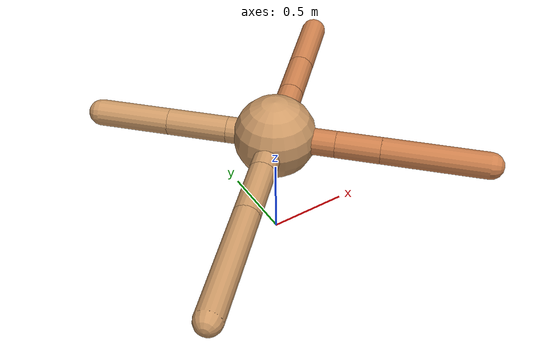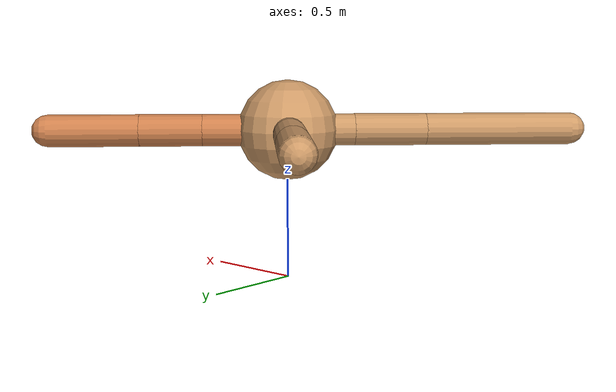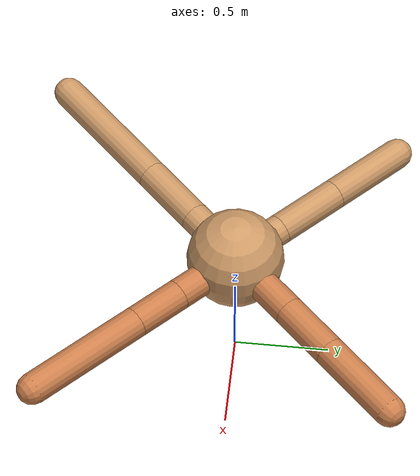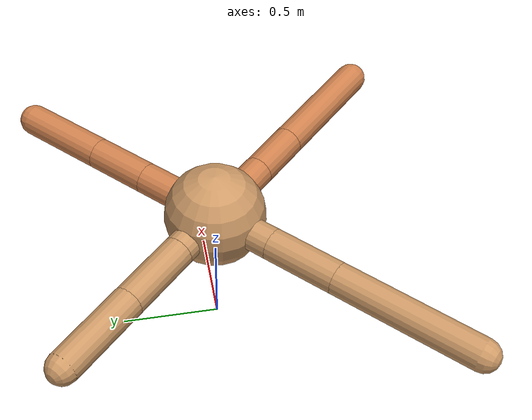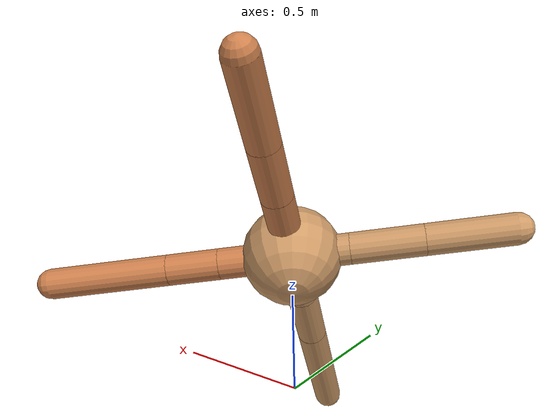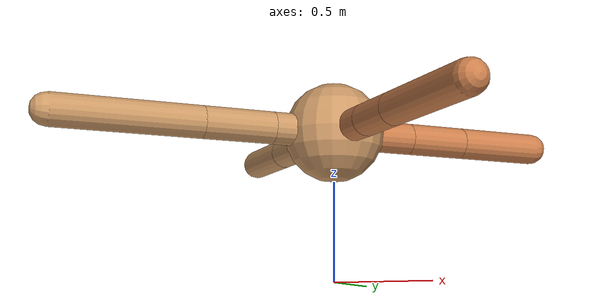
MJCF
<mujoco model="ant">
  <compiler angle="degree" coordinate="local" inertiafromgeom="true" />
  <option integrator="RK4" timestep="0.01" />
  <custom>
    <numeric data="0.0 0.0 0.55 1.0 0.0 0.0 0.0 0.0 1.0 0.0 -1.0 0.0 -1.0 0.0 1.0" name="init_qpos" />
  </custom>
  <default>
    <joint armature="1" damping="1" limited="true" />
    <geom conaffinity="0" condim="3" density="5.0" friction="1.5 0.1 0.1" margin="0.01" rgba="0.8 0.6 0.4 1" />
  </default>
  <worldbody>
    <body name="torso" pos="0 0 0.75">
      <geom name="torso_geom" pos="0 0 0" size="0.25" type="sphere" />

      <body name="front_left_leg" pos="0 0 0">
        <geom fromto="0.0 0.0 0.0 0.29981070519282044 0.29981070519282044 0.0" name="aux_1_geom" size="0.08" type="capsule" rgba=".8 .5 .3 1" />
        <body name="aux_1" pos="0.29981070519282044 0.29981070519282044 0.0">
          <joint axis="0 0 1" name="hip_1" pos="0.0 0.0 0.0" range="-40 40" type="hinge" />
          <geom fromto="0.0 0.0 0.0 0.21969359315667894 0.21969359315667894 0.0" name="left_leg_geom" size="0.08" type="capsule" rgba=".8 .5 .3 1" />
          <body pos="0.21969359315667894 0.21969359315667894 0.0" name="front_left_foot">
            <joint axis="-1 1 0" name="ankle_1" pos="0.0 0.0 0.0" range="30 100" type="hinge" />
            <geom fromto="0.0 0.0 0.0 0.316246676293531 0.316246676293531 0.0" name="left_ankle_geom" size="0.08" type="capsule" rgba=".8 .5 .3 1" />
          </body>
        </body>
      </body>
      <body name="front_right_leg" pos="0 0 0">
        <geom fromto="0.0 0.0 0.0 -0.2057122836855593 0.2057122836855593 0.0" name="aux_2_geom" size="0.08" type="capsule" />
        <body name="aux_2" pos="-0.2057122836855593 0.2057122836855593 0.0">
          <joint axis="0 0 1" name="hip_2" pos="0.0 0.0 0.0" range="-40 40" type="hinge" />
          <geom fromto="0.0 0.0 0.0 -0.25801540670189643 0.25801540670189643 0.0" name="right_leg_geom" size="0.08" type="capsule" />
          <body pos="-0.25801540670189643 0.25801540670189643 0.0" name="front_right_foot">
            <joint axis="1 1 0" name="ankle_2" pos="0.0 0.0 0.0" range="-100 -30" type="hinge" />
            <geom fromto="0.0 0.0 0.0 -0.3076073955304222 0.3076073955304222 0.0" name="right_ankle_geom" size="0.08" type="capsule" />
          </body>
        </body>
      </body>
      <body name="left_back_leg" pos="0 0 0">
        <geom fromto="0.0 0.0 0.0 -0.2357226275411669 -0.2357226275411669 0.0" name="aux_3_geom" size="0.08" type="capsule" />
        <body name="aux_3" pos="-0.2357226275411669 -0.2357226275411669 0.0">
          <joint axis="0 0 1" name="hip_3" pos="0.0 0.0 0.0" range="-40 40" type="hinge" />
          <geom fromto="0.0 0.0 0.0 -0.25321637213329584 -0.25321637213329584 0.0" name="back_leg_geom" size="0.08" type="capsule" />
          <body pos="-0.25321637213329584 -0.25321637213329584 0.0" name="left_back_foot">
            <joint axis="-1 1 0" name="ankle_3" pos="0.0 0.0 0.0" range="-100 -30" type="hinge" />
            <geom fromto="0.0 0.0 0.0 -0.5167732625188771 -0.5167732625188771 0.0" name="third_ankle_geom" size="0.08" type="capsule" />
          </body>
        </body>
      </body>
      <body name="right_back_leg" pos="0 0 0">
        <geom fromto="0.0 0.0 0.0 0.259978346858313 -0.259978346858313 0.0" name="aux_4_geom" size="0.08" type="capsule" rgba=".8 .5 .3 1" />
        <body name="aux_4" pos="0.259978346858313 -0.259978346858313 0.0">
          <joint axis="0 0 1" name="hip_4" pos="0.0 0.0 0.0" range="-40 40" type="hinge" />
          <geom fromto="0.0 0.0 0.0 0.1896696540015185 -0.1896696540015185 0.0" name="rightback_leg_geom" size="0.08" type="capsule" rgba=".8 .5 .3 1" />
          <body pos="0.1896696540015185 -0.1896696540015185 0.0" name="right_back_foot">
            <joint axis="1 1 0" name="ankle_4" pos="0.0 0.0 0.0" range="30 100" type="hinge" />
            <geom fromto="0.0 0.0 0.0 0.44794214093757073 -0.44794214093757073 0.0" name="fourth_ankle_geom" size="0.08" type="capsule" rgba=".8 .5 .3 1" />
          </body>
        </body>
      </body>
    </body>
  </worldbody>
  <actuator>
    <motor ctrllimited="true" ctrlrange="-1.0 1.0" joint="hip_4" gear="150" />
    <motor ctrllimited="true" ctrlrange="-1.0 1.0" joint="ankle_4" gear="150" />
    <motor ctrllimited="true" ctrlrange="-1.0 1.0" joint="hip_1" gear="150" />
    <motor ctrllimited="true" ctrlrange="-1.0 1.0" joint="ankle_1" gear="150" />
    <motor ctrllimited="true" ctrlrange="-1.0 1.0" joint="hip_2" gear="150" />
    <motor ctrllimited="true" ctrlrange="-1.0 1.0" joint="ankle_2" gear="150" />
    <motor ctrllimited="true" ctrlrange="-1.0 1.0" joint="hip_3" gear="150" />
    <motor ctrllimited="true" ctrlrange="-1.0 1.0" joint="ankle_3" gear="150" />
  </actuator>
</mujoco>
